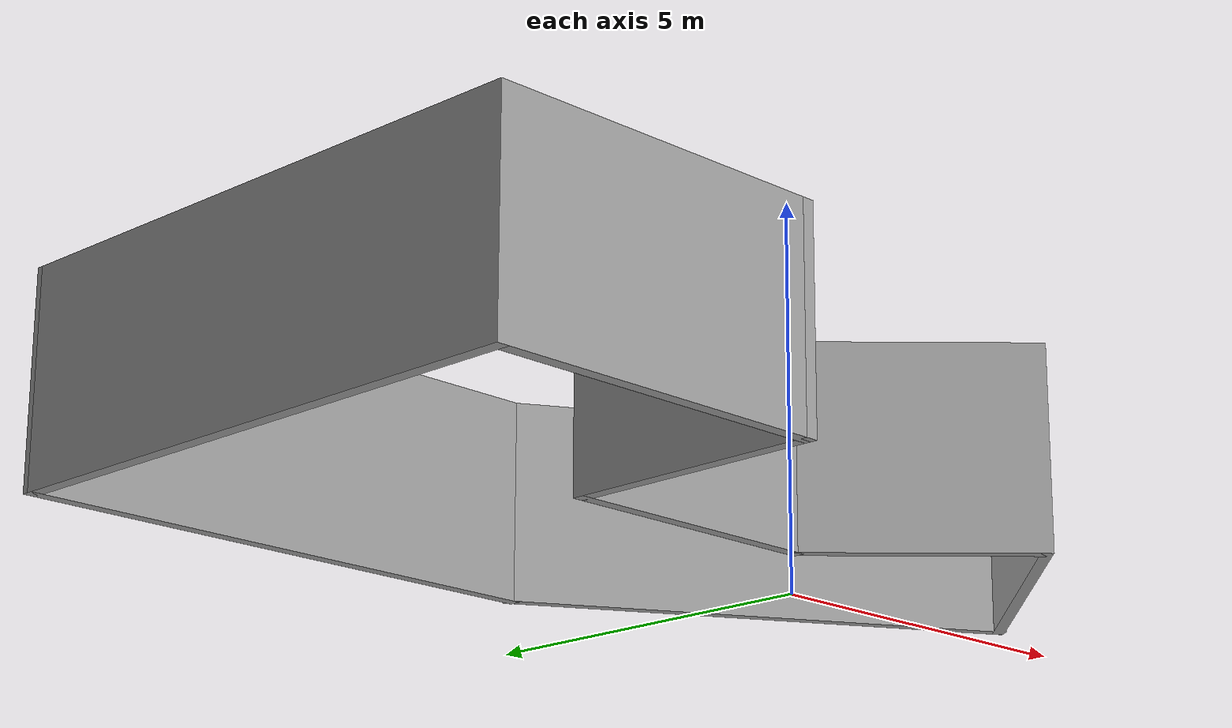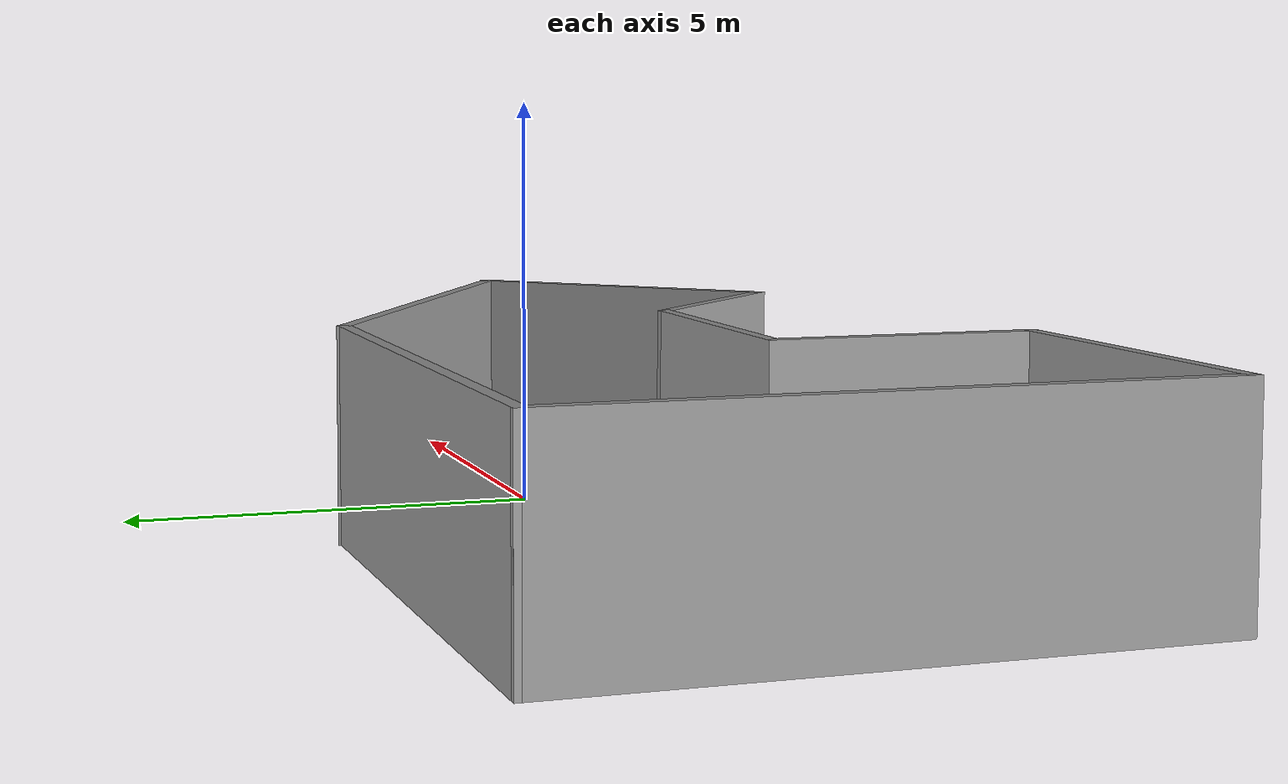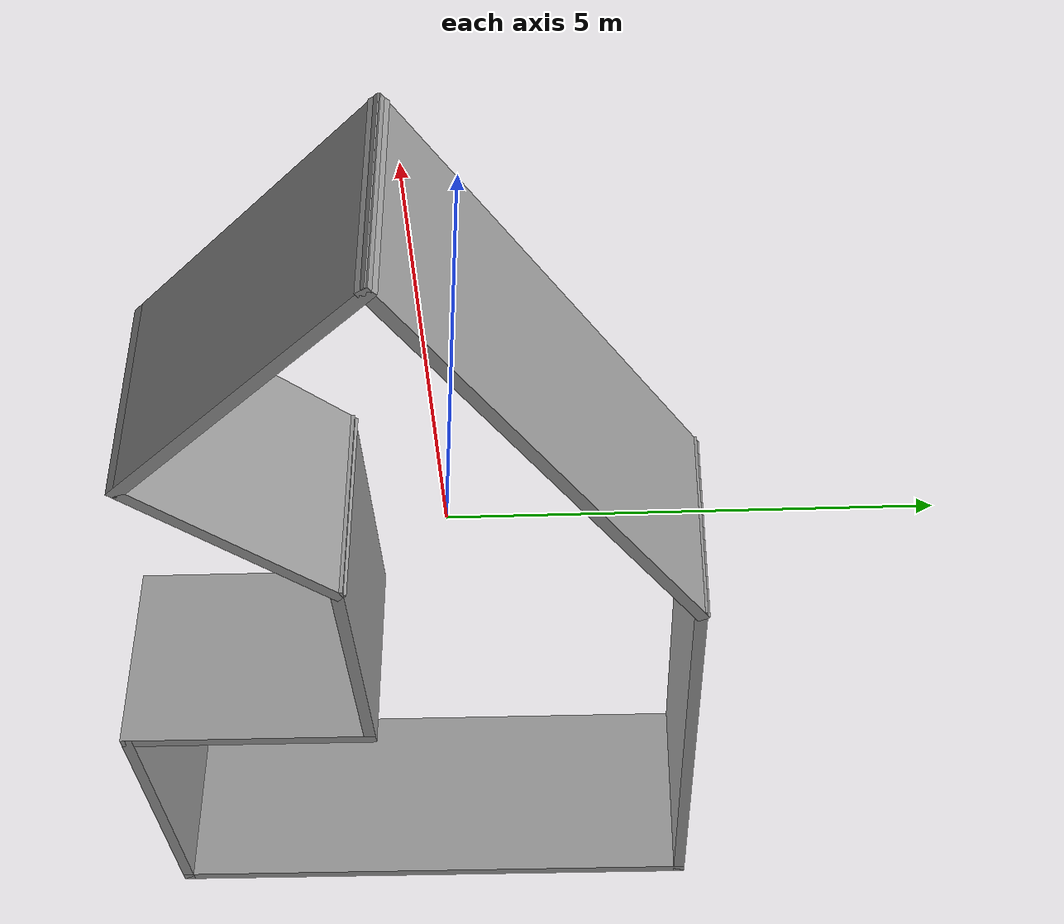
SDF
<?xml version='1.0'?>
<sdf version='1.6'>
  <model name='h2'>
    <pose frame=''>-2.73852 -0.848461 0 0 -0 0</pose>
    <link name='Wall_10'>
      <collision name='Wall_10_Collision'>
        <geometry>
          <box>
            <size>7.01538 0.15 2.5</size>
          </box>
        </geometry>
        <pose frame=''>0 0 1.25 0 -0 0</pose>
      </collision>
      <visual name='Wall_10_Visual'>
        <pose frame=''>0 0 1.25 0 -0 0</pose>
        <geometry>
          <box>
            <size>7.01538 0.15 2.5</size>
          </box>
        </geometry>
        <material>
          <script>
            <uri>file://media/materials/scripts/gazebo.material</uri>
            <name>Gazebo/Grey</name>
          </script>
          <ambient>1 1 1 1</ambient>
        </material>
        <meta>
          <layer>0</layer>
        </meta>
      </visual>
      <pose frame=''>-2.76484 3.53627 0 0 0 -3.13302</pose>
    </link>
    <link name='Wall_3'>
      <collision name='Wall_3_Collision'>
        <geometry>
          <box>
            <size>7.25 0.15 2.5</size>
          </box>
        </geometry>
        <pose frame=''>0 0 1.25 0 -0 0</pose>
      </collision>
      <visual name='Wall_3_Visual'>
        <pose frame=''>0 0 1.25 0 -0 0</pose>
        <geometry>
          <box>
            <size>7.25 0.15 2.5</size>
          </box>
        </geometry>
        <material>
          <script>
            <uri>file://media/materials/scripts/gazebo.material</uri>
            <name>Gazebo/Grey</name>
          </script>
          <ambient>1 1 1 1</ambient>
        </material>
        <meta>
          <layer>0</layer>
        </meta>
      </visual>
      <pose frame=''>-6.19741 -0.043168 0 0 0 -1.5708</pose>
    </link>
    <link name='Wall_4'>
      <collision name='Wall_4_Collision'>
        <geometry>
          <box>
            <size>4.25 0.15 2.5</size>
          </box>
        </geometry>
        <pose frame=''>0 0 1.25 0 -0 0</pose>
      </collision>
      <visual name='Wall_4_Visual'>
        <pose frame=''>0 0 1.25 0 -0 0</pose>
        <geometry>
          <box>
            <size>4.25 0.15 2.5</size>
          </box>
        </geometry>
        <material>
          <script>
            <uri>file://media/materials/scripts/gazebo.material</uri>
            <name>Gazebo/Grey</name>
          </script>
          <ambient>1 1 1 1</ambient>
        </material>
        <meta>
          <layer>0</layer>
        </meta>
      </visual>
      <pose frame=''>-4.14741 -3.59317 0 0 -0 0</pose>
    </link>
    <link name='Wall_5'>
      <collision name='Wall_5_Collision'>
        <geometry>
          <box>
            <size>3.25 0.15 2.5</size>
          </box>
        </geometry>
        <pose frame=''>0 0 1.25 0 -0 0</pose>
      </collision>
      <visual name='Wall_5_Visual'>
        <pose frame=''>0 0 1.25 0 -0 0</pose>
        <geometry>
          <box>
            <size>3.25 0.15 2.5</size>
          </box>
        </geometry>
        <material>
          <script>
            <uri>file://media/materials/scripts/gazebo.material</uri>
            <name>Gazebo/Grey</name>
          </script>
          <ambient>1 1 1 1</ambient>
        </material>
        <meta>
          <layer>0</layer>
        </meta>
      </visual>
      <pose frame=''>-2.09741 -2.04317 0 0 -0 1.5708</pose>
    </link>
    <link name='Wall_6'>
      <collision name='Wall_6_Collision'>
        <geometry>
          <box>
            <size>3.5 0.15 2.5</size>
          </box>
        </geometry>
        <pose frame=''>0 0 1.25 0 -0 0</pose>
      </collision>
      <visual name='Wall_6_Visual'>
        <pose frame=''>0 0 1.25 0 -0 0</pose>
        <geometry>
          <box>
            <size>3.5 0.15 2.5</size>
          </box>
        </geometry>
        <material>
          <script>
            <uri>file://media/materials/scripts/gazebo.material</uri>
            <name>Gazebo/Grey</name>
          </script>
          <ambient>1 1 1 1</ambient>
        </material>
        <meta>
          <layer>0</layer>
        </meta>
      </visual>
      <pose frame=''>-0.422409 -0.493168 0 0 -0 0</pose>
    </link>
    <link name='Wall_7'>
      <collision name='Wall_7_Collision'>
        <geometry>
          <box>
            <size>3 0.15 2.5</size>
          </box>
        </geometry>
        <pose frame=''>0 0 1.25 0 -0 0</pose>
      </collision>
      <visual name='Wall_7_Visual'>
        <pose frame=''>0 0 1.25 0 -0 0</pose>
        <geometry>
          <box>
            <size>3 0.15 2.5</size>
          </box>
        </geometry>
        <material>
          <script>
            <uri>file://media/materials/scripts/gazebo.material</uri>
            <name>Gazebo/Grey</name>
          </script>
          <ambient>1 1 1 1</ambient>
        </material>
        <meta>
          <layer>0</layer>
        </meta>
      </visual>
      <pose frame=''>2.26022 -1.5008 0 0 0 -0.785398</pose>
    </link>
    <link name='Wall_8'>
      <collision name='Wall_8_Collision'>
        <geometry>
          <box>
            <size>4.25 0.15 2.5</size>
          </box>
        </geometry>
        <pose frame=''>0 0 1.25 0 -0 0</pose>
      </collision>
      <visual name='Wall_8_Visual'>
        <pose frame=''>0 0 1.25 0 -0 0</pose>
        <geometry>
          <box>
            <size>4.25 0.15 2.5</size>
          </box>
        </geometry>
        <material>
          <script>
            <uri>file://media/materials/scripts/gazebo.material</uri>
            <name>Gazebo/Grey</name>
          </script>
          <ambient>1 1 1 1</ambient>
        </material>
        <meta>
          <layer>0</layer>
        </meta>
      </visual>
      <pose frame=''>4.71741 -1.05885 0 0 -0 0.785398</pose>
    </link>
    <link name='Wall_9'>
      <collision name='Wall_9_Collision'>
        <geometry>
          <box>
            <size>6.5 0.15 2.5</size>
          </box>
        </geometry>
        <pose frame=''>0 0 1.25 0 -0 0</pose>
      </collision>
      <visual name='Wall_9_Visual'>
        <pose frame=''>0 0 1.25 0 -0 0</pose>
        <geometry>
          <box>
            <size>6.5 0.15 2.5</size>
          </box>
        </geometry>
        <material>
          <script>
            <uri>file://media/materials/scripts/gazebo.material</uri>
            <name>Gazebo/Grey</name>
          </script>
          <ambient>1 1 1 1</ambient>
        </material>
        <meta>
          <layer>0</layer>
        </meta>
      </visual>
      <pose frame=''>3.41735 1.97822 0 0 -0 2.61799</pose>
    </link>
    <static>1</static>
  </model>
</sdf>
